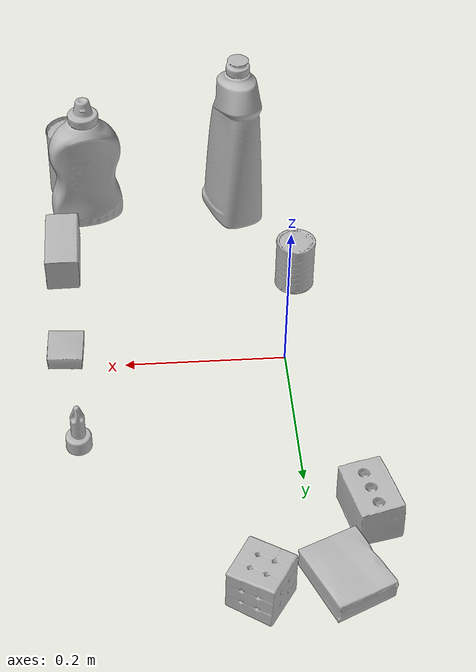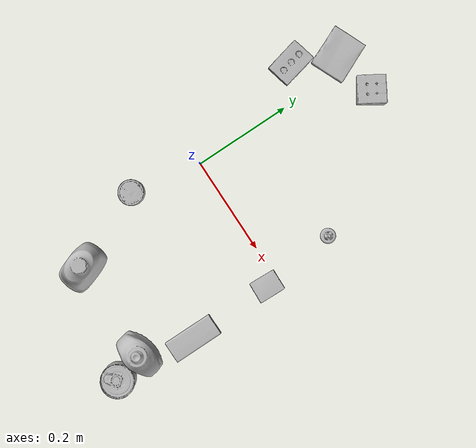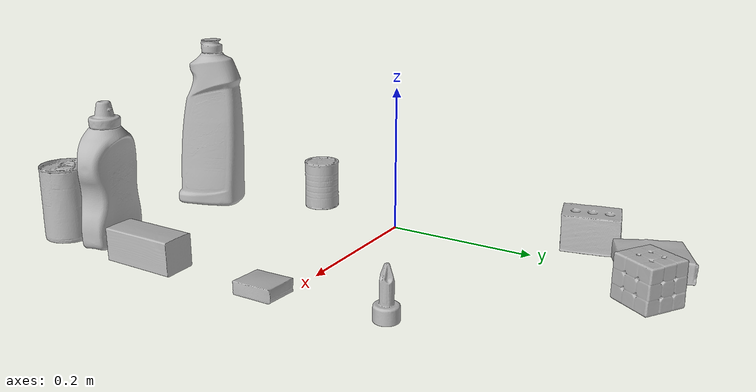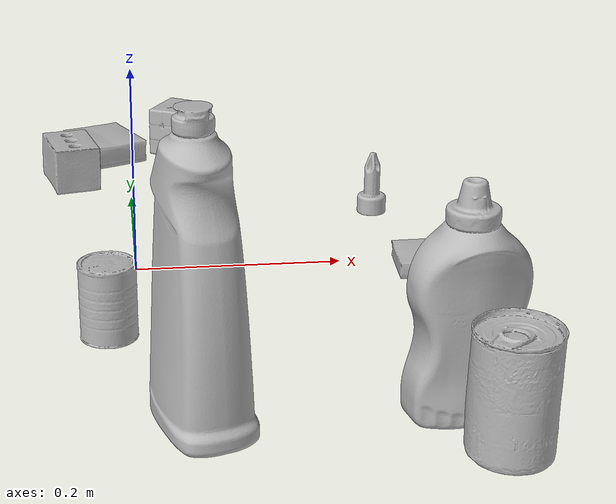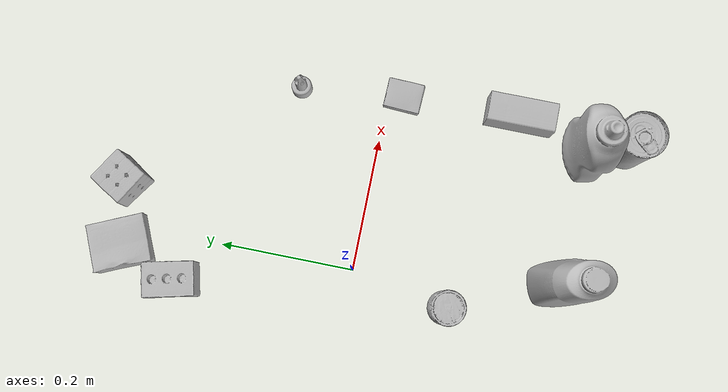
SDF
<sdf version="1.4">
  <world name="default">
    <light name="light1" type="point">
      <pose>0 0 1 0 0 0</pose>
      <diffuse>3 3 3 1</diffuse>
      <specular>3 3 3 1</specular>
    </light>
    <light name="light2" type="point">
      <pose>0 0.5 2 0 0 0</pose>
      <diffuse>1 1 1 1</diffuse>
      <specular>1 1 1 1</specular>
    </light>
    <light name="light3" type="point">
      <pose>0 0.5 2 0 0 0</pose>
      <diffuse>3 3 3 1</diffuse>
      <specular>3 3 3 1</specular>
    </light>
    <scene>
      <ambient>0.7 0.7 0.7</ambient>
    </scene>
    <model name="bottle1">
      <link name="link_bottle1">
        <collision name="default">
          <geometry>
            <mesh>
              <uri>model://bleach_cleanser/collision_meshes/collision.obj</uri>
              <scale>1.0 1.0 1.0</scale>
            </mesh>
          </geometry>
          <surface>
            <friction>
              <ode>
                <mu>0.5</mu>
                <mu2>0.5</mu2>
              </ode>
            </friction>
          <contact>
        <ode>
            <max_vel>0</max_vel>
            <min_depth>0.0001</min_depth>
            <kp>1e8</kp>
        </ode>
    </contact></surface>
        </collision>
        <visual name="default">
          <geometry>
            <mesh>
              <uri>model://bleach_cleanser/visual_meshes/visual.dae</uri>
              <scale>1.0 1.0 1.0</scale>
            </mesh>
          </geometry>
        </visual>
        <inertial>
          <mass>1.1050143241882324</mass>
          <pose>0.00012193183647468686 0.0037838828284293413 -0.02442161738872528 -0.07381670616137478 0.0004201160282461273 -0.006875061809122935</pose>
          <inertia>
            <ixx>0.0053782654</ixx>
            <iyy>0.005011756</iyy>
            <izz>0.00091954356</izz>
            <ixy>0</ixy>
            <ixz>0</ixz>
            <iyz>0</iyz>
          </inertia>
        </inertial>
      </link>
      <pose>0.04125840216875076 -0.3026120066642761 0.12578412890434265 -0.00019869477534667442 1.7859775050980338e-05 0.3263267612764304</pose>
    </model>
    <model name="bottle2">
      <link name="link_bottle2">
        <collision name="default">
          <geometry>
            <mesh>
              <uri>model://mustard_bottle/collision_meshes/collision.obj</uri>
              <scale>1.0 1.0 1.0</scale>
            </mesh>
          </geometry>
          <surface>
            <friction>
              <ode>
                <mu>0.5</mu>
                <mu2>0.5</mu2>
              </ode>
            </friction>
          <contact>
        <ode>
            <max_vel>0</max_vel>
            <min_depth>0.0001</min_depth>
            <kp>1e8</kp>
        </ode>
    </contact></surface>
        </collision>
        <visual name="default">
          <geometry>
            <mesh>
              <uri>model://mustard_bottle/visual_meshes/visual.dae</uri>
              <scale>1.0 1.0 1.0</scale>
            </mesh>
          </geometry>
        </visual>
        <inertial>
          <mass>0.622285008430481</mass>
          <pose>0.0005032453336752951 -0.0001564739941386506 -0.0174757931381464 0.0004182326458762318 0.0009465782998157723 0.024853714910341117</pose>
          <inertia>
            <ixx>0.0017280002</ixx>
            <iyy>0.0015161741</iyy>
            <izz>0.00045541534</izz>
            <ixy>0</ixy>
            <ixz>0</ixz>
            <iyz>0</iyz>
          </inertia>
        </inertial>
      </link>
      <pose>0.2432395964860916 -0.3036508560180664 0.09583087265491486 -0.012050647463762111 -0.004890394887084212 1.7710795961007078</pose>
    </model>
    <model name="toy1">
      <link name="link_toy1">
        <collision name="default">
          <geometry>
            <mesh>
              <uri>model://foam_brick/collision_meshes/collision.obj</uri>
              <scale>1.0 1.0 1.0</scale>
            </mesh>
          </geometry>
          <surface>
            <friction>
              <ode>
                <mu>0.5</mu>
                <mu2>0.5</mu2>
              </ode>
            </friction>
          <contact>
        <ode>
            <max_vel>0</max_vel>
            <min_depth>0.0001</min_depth>
            <kp>1e8</kp>
        </ode>
    </contact></surface>
        </collision>
        <visual name="default">
          <geometry>
            <mesh>
              <uri>model://foam_brick/visual_meshes/visual.dae</uri>
              <scale>1.0 1.0 1.0</scale>
            </mesh>
          </geometry>
        </visual>
        <inertial>
          <mass>0.1664208173751831</mass>
          <pose>-0.00025224717683158815 0.0003458438441157341 -0.00025321010616607964 -0.2940189404221327 0.017274440573450563 -0.0007449871782747126</pose>
          <inertia>
            <ixx>7.269573e-05</ixx>
            <iyy>0.00011606247</iyy>
            <izz>0.000117537464</izz>
            <ixy>0</ixy>
            <ixz>0</ixz>
            <iyz>0</iyz>
          </inertia>
        </inertial>
      </link>
      <pose>-0.06608664244413376 0.25803515315055847 0.025922803208231926 0.013416957053196604 0.004152992605284616 1.8002636856698646</pose>
    </model>
    <model name="toy2">
      <link name="link_toy2">
        <collision name="default">
          <geometry>
            <mesh>
              <uri>model://d_toy_airplane/collision_meshes/collision.obj</uri>
              <scale>1.0 1.0 1.0</scale>
            </mesh>
          </geometry>
          <surface>
            <friction>
              <ode>
                <mu>0.5</mu>
                <mu2>0.5</mu2>
              </ode>
            </friction>
          <contact>
        <ode>
            <max_vel>0</max_vel>
            <min_depth>0.0001</min_depth>
            <kp>1e8</kp>
        </ode>
    </contact></surface>
        </collision>
        <visual name="default">
          <geometry>
            <mesh>
              <uri>model://d_toy_airplane/visual_meshes/visual.dae</uri>
              <scale>1.0 1.0 1.0</scale>
            </mesh>
          </geometry>
        </visual>
        <inertial>
          <mass>0.021938346326351166</mass>
          <pose>9.410325583303347e-05 -5.8093231928069144e-05 -0.01172809861600399 0.0002669142468379238 0.0046790018194854816 0.5194488187392164</pose>
          <inertia>
            <ixx>6.5766894e-06</ixx>
            <iyy>6.581649e-06</iyy>
            <izz>1.9855454e-06</izz>
            <ixy>0</ixy>
            <ixz>0</ixz>
            <iyz>0</iyz>
          </inertia>
        </inertial>
      </link>
      <pose>0.2573675811290741 0.13139764964580536 0.033338915556669235 4.1483043501090604e-05 -9.931147051211782e-05 2.369421284170907</pose>
    </model>
    <model name="can1">
      <link name="link_can1">
        <collision name="default">
          <geometry>
            <mesh>
              <uri>model://tomato_soup_can/collision_meshes/collision.obj</uri>
              <scale>1.0 1.0 1.0</scale>
            </mesh>
          </geometry>
          <surface>
            <friction>
              <ode>
                <mu>0.5</mu>
                <mu2>0.5</mu2>
              </ode>
            </friction>
          <contact>
        <ode>
            <max_vel>0</max_vel>
            <min_depth>0.0001</min_depth>
            <kp>1e8</kp>
        </ode>
    </contact></surface>
        </collision>
        <visual name="default">
          <geometry>
            <mesh>
              <uri>model://tomato_soup_can/visual_meshes/visual.dae</uri>
              <scale>1.0 1.0 1.0</scale>
            </mesh>
          </geometry>
        </visual>
        <inertial>
          <mass>0.39673706889152527</mass>
          <pose>0.00012652271834667772 0.00010805520287249237 -0.0017973972717300057 0.007020066809275346 0.000422998323222239 -0.009903841103285913</pose>
          <inertia>
            <ixx>0.00043498844</ixx>
            <iyy>0.00043247454</iyy>
            <izz>0.00022545052</izz>
            <ixy>0</ixy>
            <ixz>0</ixz>
            <iyz>0</iyz>
          </inertia>
        </inertial>
      </link>
      <pose>0.2631751596927643 -0.36544695496559143 0.05127401277422905 -4.577511245514369e-07 -7.179904151059395e-07 -1.1510084058601975</pose>
    </model>
    <model name="can2">
      <link name="link_can2">
        <collision name="default">
          <geometry>
            <mesh>
              <uri>model://master_chef_can/collision_meshes/collision.obj</uri>
              <scale>0.5 0.5 0.5</scale>
            </mesh>
          </geometry>
          <surface>
            <friction>
              <ode>
                <mu>0.5</mu>
                <mu2>0.5</mu2>
              </ode>
            </friction>
          <contact>
        <ode>
            <max_vel>0</max_vel>
            <min_depth>0.0001</min_depth>
            <kp>1e8</kp>
        </ode>
    </contact></surface>
        </collision>
        <visual name="default">
          <geometry>
            <mesh>
              <uri>model://master_chef_can/visual_meshes/visual.dae</uri>
              <scale>0.5 0.5 0.5</scale>
            </mesh>
          </geometry>
        </visual>
        <inertial>
          <mass>0.08835740387439728</mass>
          <pose>-4.6619654312962666e-05 1.3926853625889635e-07 -5.079947004560381e-05 -0.0017995147102642629 0.0006479189020740588 -0.6102650934471076</pose>
          <inertia>
            <ixx>5.1859814e-05</ixx>
            <iyy>5.1478128e-05</iyy>
            <izz>2.8656508e-05</izz>
            <ixy>0</ixy>
            <ixz>0</ixz>
            <iyz>0</iyz>
          </inertia>
        </inertial>
      </link>
      <pose>-0.027273695915937424 -0.14331349730491638 0.03530199080705643 -1.392651453742959e-06 -1.02461669285717e-06 -2.188883862061633</pose>
    </model>
    <model name="box1">
      <link name="link_box1">
        <collision name="default">
          <geometry>
            <mesh>
              <uri>model://wood_block/collision_meshes/collision.obj</uri>
              <scale>0.5 0.5 0.5</scale>
            </mesh>
          </geometry>
          <surface>
            <friction>
              <ode>
                <mu>0.5</mu>
                <mu2>0.5</mu2>
              </ode>
            </friction>
          <contact>
        <ode>
            <max_vel>0</max_vel>
            <min_depth>0.0001</min_depth>
            <kp>1e8</kp>
        </ode>
    </contact></surface>
        </collision>
        <visual name="default">
          <geometry>
            <mesh>
              <uri>model://wood_block/visual_meshes/visual.dae</uri>
              <scale>0.5 0.5 0.5</scale>
            </mesh>
          </geometry>
        </visual>
        <inertial>
          <mass>0.15377527475357056</mass>
          <pose>-2.9066577553749084e-06 -0.000285404734313488 0.00013204291462898254 -0.05220825990774677 -0.0051926953585221414 -0.0068613782788382646</pose>
          <inertia>
            <ixx>5.1443654e-05</ixx>
            <iyy>0.00016251049</iyy>
            <izz>0.00016190263</izz>
            <ixy>0</ixy>
            <ixz>0</ixz>
            <iyz>0</iyz>
          </inertia>
        </inertial>
      </link>
      <pose>0.2777649760246277 -0.2009558081626892 0.022629262879490852 -0.005208637489623889 0.005718749955633773 -1.5675618023334912</pose>
    </model>
    <model name="box2">
      <link name="link_box2">
        <collision name="default">
          <geometry>
            <mesh>
              <uri>model://rubiks_cube/collision_meshes/collision.obj</uri>
              <scale>1.0 1.0 1.0</scale>
            </mesh>
          </geometry>
          <surface>
            <friction>
              <ode>
                <mu>0.5</mu>
                <mu2>0.5</mu2>
              </ode>
            </friction>
          <contact>
        <ode>
            <max_vel>0</max_vel>
            <min_depth>0.0001</min_depth>
            <kp>1e8</kp>
        </ode>
    </contact></surface>
        </collision>
        <visual name="default">
          <geometry>
            <mesh>
              <uri>model://rubiks_cube/visual_meshes/visual.dae</uri>
              <scale>1.0 1.0 1.0</scale>
            </mesh>
          </geometry>
        </visual>
        <inertial>
          <mass>0.2856966555118561</mass>
          <pose>2.6721041649580002e-05 5.2569666877388954e-05 -7.264316082000732e-06 -0.05467209736319516 -0.09813912050272719 -0.034455106160143086</pose>
          <inertia>
            <ixx>0.00015786657</ixx>
            <iyy>0.00015713037</iyy>
            <izz>0.00015917476</izz>
            <ixy>0</ixy>
            <ixz>0</ixz>
            <iyz>0</iyz>
          </inertia>
        </inertial>
      </link>
      <pose>0.06506416946649551 0.36011695861816406 0.028678933158516884 -5.34899651212081e-06 -2.2510202111207258e-06 -0.5553620090625805</pose>
    </model>
    <model name="box3">
      <link name="link_box3">
        <collision name="default">
          <geometry>
            <mesh>
              <uri>model://gelatin_box/collision_meshes/collision.obj</uri>
              <scale>1.0 1.0 1.0</scale>
            </mesh>
          </geometry>
          <surface>
            <friction>
              <ode>
                <mu>0.5</mu>
                <mu2>0.5</mu2>
              </ode>
            </friction>
          <contact>
        <ode>
            <max_vel>0</max_vel>
            <min_depth>0.0001</min_depth>
            <kp>1e8</kp>
        </ode>
    </contact></surface>
        </collision>
        <visual name="default">
          <geometry>
            <mesh>
              <uri>model://gelatin_box/visual_meshes/visual.dae</uri>
              <scale>1.0 1.0 1.0</scale>
            </mesh>
          </geometry>
        </visual>
        <inertial>
          <mass>0.24612535536289215</mass>
          <pose>0.0004319618456065655 0.00011156871914863586 -0.00036403213744051754 -0.0010503719772071295 -0.004755818223732799 0.016440561334178715</pose>
          <inertia>
            <ixx>0.00017374444</ixx>
            <iyy>0.00012410474</iyy>
            <izz>0.00026447774</izz>
            <ixy>0</ixy>
            <ixz>0</ixz>
            <iyz>0</iyz>
          </inertia>
        </inertial>
      </link>
      <pose>-0.028918486088514328 0.3458433449268341 0.01516831573098898 0.005596752368058078 -0.007303765470063236 -2.737130663067676</pose>
    </model>
    <model name="box4">
      <link name="link_box4">
        <collision name="default">
          <geometry>
            <mesh>
              <uri>model://pudding_box/collision_meshes/collision.obj</uri>
              <scale>0.5 0.5 0.5</scale>
            </mesh>
          </geometry>
          <surface>
            <friction>
              <ode>
                <mu>0.5</mu>
                <mu2>0.5</mu2>
              </ode>
            </friction>
          <contact>
        <ode>
            <max_vel>0</max_vel>
            <min_depth>0.0001</min_depth>
            <kp>1e8</kp>
        </ode>
    </contact></surface>
        </collision>
        <visual name="default">
          <geometry>
            <mesh>
              <uri>model://pudding_box/visual_meshes/visual.dae</uri>
              <scale>0.5 0.5 0.5</scale>
            </mesh>
          </geometry>
        </visual>
        <inertial>
          <mass>0.025328172370791435</mass>
          <pose>0.00024474109522998333 0.00040339428232982755 -0.0002594413817860186 0.00521310085836893 -0.006603797787762854 0.020079828890944847</pose>
          <inertia>
            <ixx>7.15805e-06</ixx>
            <iyy>4.8159864e-06</iyy>
            <izz>1.0570731e-05</izz>
            <ixy>0</ixy>
            <ixz>0</ixz>
            <iyz>0</iyz>
          </inertia>
        </inertial>
      </link>
      <pose>0.27344298362731934 -0.023574156686663628 0.00986290443688631 0.02234849864443775 -0.011391674930159948 -0.03887515445291293</pose>
    </model>
  <physics type="ode">
      <max_contacts>50</max_contacts>
      <ode>
        <solver>
          <type>quick</type>
          <iters>75</iters>
        </solver>
        <constraints>
          <contact_max_correcting_vel>0</contact_max_correcting_vel>
          <contact_surface_layer>0</contact_surface_layer>
        </constraints>
      </ode>
    </physics></world>
</sdf>
